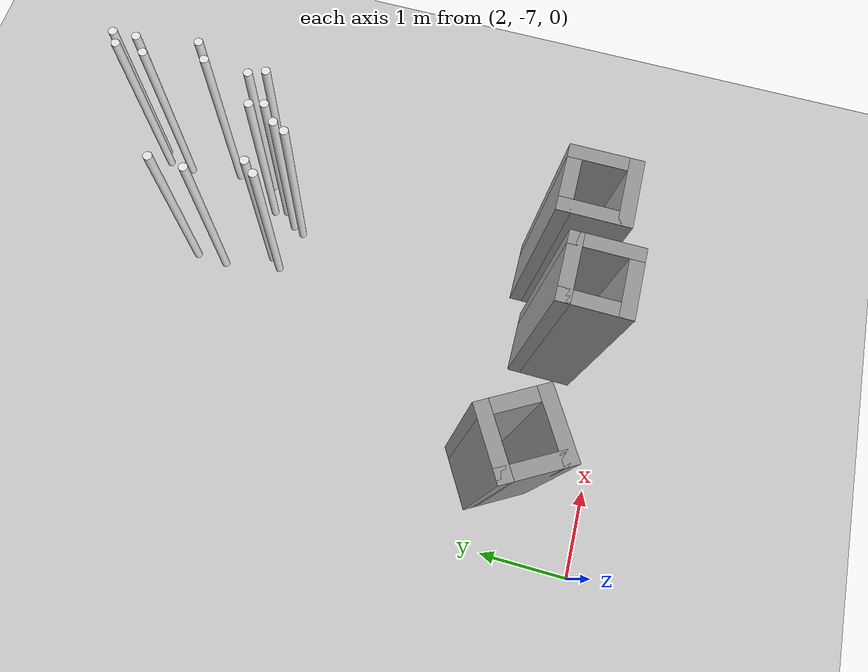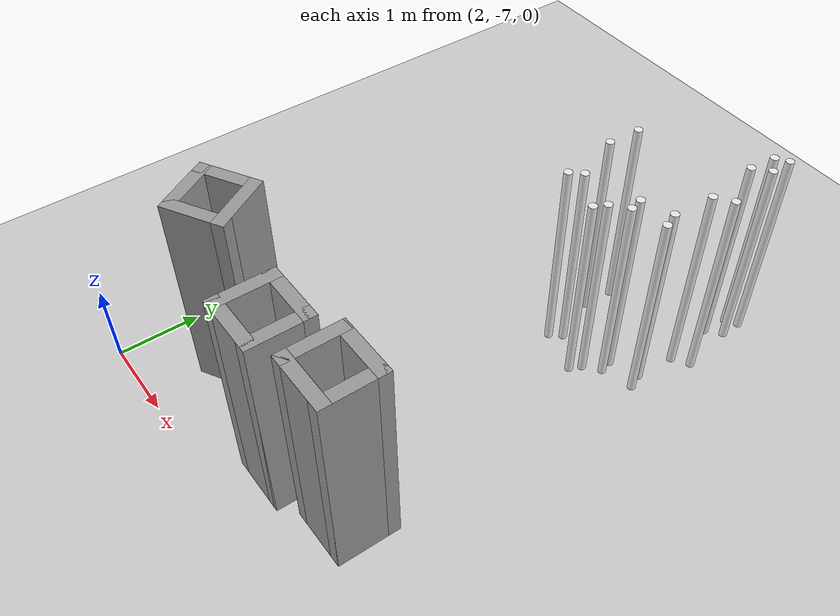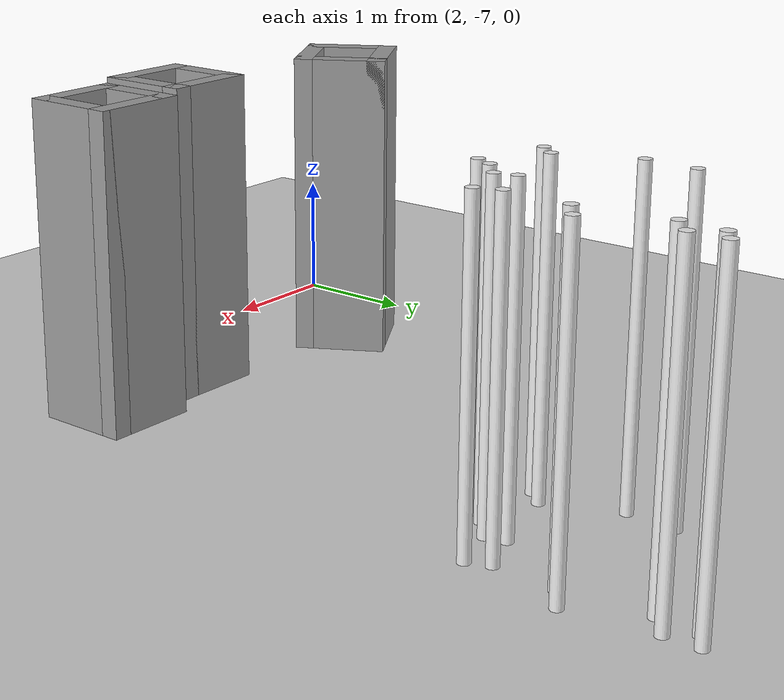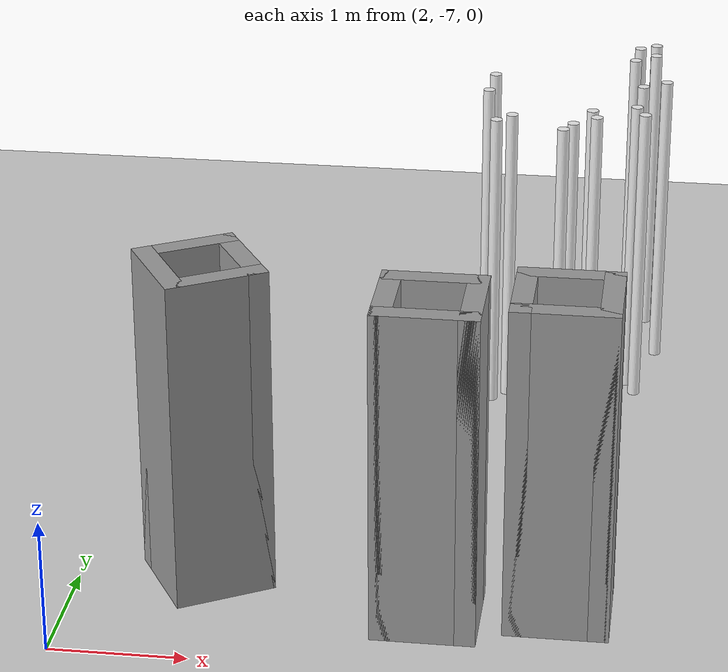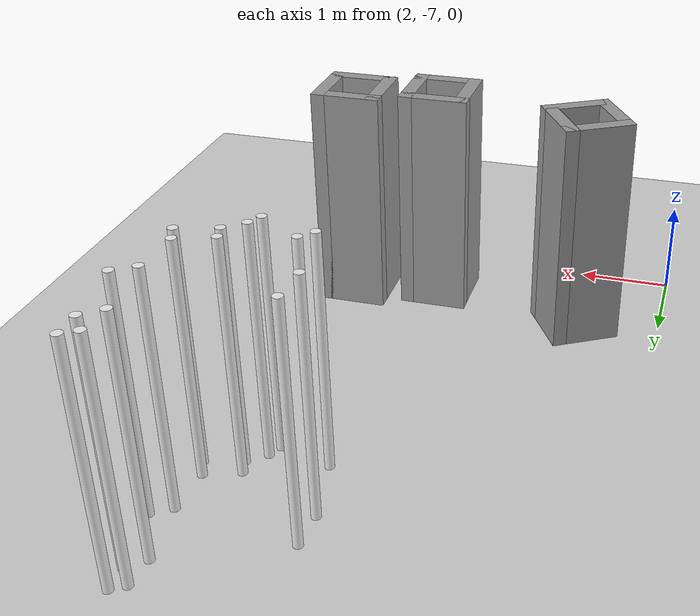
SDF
<sdf version="1.7">
 <world name="default">
  <model name="ground_plane">
   <static>1</static>
   <link name="link">
    <collision name="collision">
     <geometry><plane><normal>0 0 1</normal><size>100 100</size></plane></geometry>
     <surface><friction><ode><mu>100</mu><mu2>50</mu2></ode></friction></surface>
    </collision>
    <visual name="visual">
     <cast_shadows>0</cast_shadows>
     <geometry><plane><normal>0 0 1</normal><size>100 100</size></plane></geometry>
     <material>
      <script><uri>file://media/materials/scripts/gazebo.material</uri><name>Gazebo/Grey</name></script>
     </material>
    </visual>
   </link>
  </model>
  <model name="0.75m_cube_0">
   <pose>4.6917 -7.433 0 0 0 -1.04396</pose>
   <link name="Wall_0">
    <collision name="Wall_0_Collision">
     <geometry><box><size>0.75 0.15 2.5</size></box></geometry>
     <pose>0 0 1.25 0 -0 0</pose>
    </collision>
    <visual name="Wall_0_Visual">
     <pose>0 0 1.25 0 -0 0</pose>
     <geometry><box><size>0.75 0.15 2.5</size></box></geometry>
     <material>
      <script><uri>file://media/materials/scripts/gazebo.material</uri><name>Gazebo/Grey</name></script>
      <ambient>1 1 1 1</ambient>
     </material>
     <meta><layer>0</layer></meta>
    </visual>
    <pose>-2.5575 -0.7225 0 0 -0 -1.5708</pose>
   </link>
   <link name="Wall_1">
    <collision name="Wall_1_Collision">
     <geometry><box><size>0.75 0.15 2.5</size></box></geometry>
     <pose>0 0 1.25 0 -0 0</pose>
    </collision>
    <visual name="Wall_1_Visual">
     <pose>0 0 1.25 0 -0 0</pose>
     <geometry><box><size>0.75 0.15 2.5</size></box></geometry>
     <material>
      <script><uri>file://media/materials/scripts/gazebo.material</uri><name>Gazebo/Grey</name></script>
      <ambient>1 1 1 1</ambient>
     </material>
     <meta><layer>0</layer></meta>
    </visual>
    <pose>-2.2575 -1.0225 0 0 -0 0</pose>
   </link>
   <link name="Wall_2">
    <collision name="Wall_2_Collision">
     <geometry><box><size>0.75 0.15 2.5</size></box></geometry>
     <pose>0 0 1.25 0 -0 0</pose>
    </collision>
    <visual name="Wall_2_Visual">
     <pose>0 0 1.25 0 -0 0</pose>
     <geometry><box><size>0.75 0.15 2.5</size></box></geometry>
     <material>
      <script><uri>file://media/materials/scripts/gazebo.material</uri><name>Gazebo/Grey</name></script>
      <ambient>1 1 1 1</ambient>
     </material>
     <meta><layer>0</layer></meta>
    </visual>
    <pose>-1.9575 -0.7225 0 0 -0 1.5708</pose>
   </link>
   <link name="Wall_3">
    <collision name="Wall_3_Collision">
     <geometry><box><size>0.75 0.15 2.5</size></box></geometry>
     <pose>0 0 1.25 0 -0 0</pose>
    </collision>
    <visual name="Wall_3_Visual">
     <pose>0 0 1.25 0 -0 0</pose>
     <geometry><box><size>0.75 0.15 2.5</size></box></geometry>
     <material>
      <script><uri>file://media/materials/scripts/gazebo.material</uri><name>Gazebo/Grey</name></script>
      <ambient>1 1 1 1</ambient>
     </material>
     <meta><layer>0</layer></meta>
    </visual>
    <pose>-2.2575 -0.4225 0 0 -0 3.14159</pose>
   </link>
   <static>1</static>
  </model>
  <model name="0.75m_cube_1">
   <pose>6.83632 -5.49477 0 0 -0 0</pose>
   <link name="Wall_0">
    <collision name="Wall_0_Collision">
     <geometry><box><size>0.75 0.15 2.5</size></box></geometry>
     <pose>0 0 1.25 0 -0 0</pose>
    </collision>
    <visual name="Wall_0_Visual">
     <pose>0 0 1.25 0 -0 0</pose>
     <geometry><box><size>0.75 0.15 2.5</size></box></geometry>
     <material>
      <script><uri>file://media/materials/scripts/gazebo.material</uri><name>Gazebo/Grey</name></script>
      <ambient>1 1 1 1</ambient>
     </material>
     <meta><layer>0</layer></meta>
    </visual>
    <pose>-2.5575 -0.7225 0 0 -0 -1.5708</pose>
   </link>
   <link name="Wall_1">
    <collision name="Wall_1_Collision">
     <geometry><box><size>0.75 0.15 2.5</size></box></geometry>
     <pose>0 0 1.25 0 -0 0</pose>
    </collision>
    <visual name="Wall_1_Visual">
     <pose>0 0 1.25 0 -0 0</pose>
     <geometry><box><size>0.75 0.15 2.5</size></box></geometry>
     <material>
      <script><uri>file://media/materials/scripts/gazebo.material</uri><name>Gazebo/Grey</name></script>
      <ambient>1 1 1 1</ambient>
     </material>
     <meta><layer>0</layer></meta>
    </visual>
    <pose>-2.2575 -1.0225 0 0 -0 0</pose>
   </link>
   <link name="Wall_2">
    <collision name="Wall_2_Collision">
     <geometry><box><size>0.75 0.15 2.5</size></box></geometry>
     <pose>0 0 1.25 0 -0 0</pose>
    </collision>
    <visual name="Wall_2_Visual">
     <pose>0 0 1.25 0 -0 0</pose>
     <geometry><box><size>0.75 0.15 2.5</size></box></geometry>
     <material>
      <script><uri>file://media/materials/scripts/gazebo.material</uri><name>Gazebo/Grey</name></script>
      <ambient>1 1 1 1</ambient>
     </material>
     <meta><layer>0</layer></meta>
    </visual>
    <pose>-1.9575 -0.7225 0 0 -0 1.5708</pose>
   </link>
   <link name="Wall_3">
    <collision name="Wall_3_Collision">
     <geometry><box><size>0.75 0.15 2.5</size></box></geometry>
     <pose>0 0 1.25 0 -0 0</pose>
    </collision>
    <visual name="Wall_3_Visual">
     <pose>0 0 1.25 0 -0 0</pose>
     <geometry><box><size>0.75 0.15 2.5</size></box></geometry>
     <material>
      <script><uri>file://media/materials/scripts/gazebo.material</uri><name>Gazebo/Grey</name></script>
      <ambient>1 1 1 1</ambient>
     </material>
     <meta><layer>0</layer></meta>
    </visual>
    <pose>-2.2575 -0.4225 0 0 -0 3.14159</pose>
   </link>
   <static>1</static>
  </model>
  <model name="0.75m_cube_1_clone">
   <pose>7.75443 -5.3216 0 0 -0 0</pose>
   <link name="Wall_0">
    <collision name="Wall_0_Collision">
     <geometry><box><size>0.75 0.15 2.5</size></box></geometry>
     <pose>0 0 1.25 0 -0 0</pose>
    </collision>
    <visual name="Wall_0_Visual">
     <pose>0 0 1.25 0 -0 0</pose>
     <geometry><box><size>0.75 0.15 2.5</size></box></geometry>
     <material>
      <script><uri>file://media/materials/scripts/gazebo.material</uri><name>Gazebo/Grey</name></script>
      <ambient>1 1 1 1</ambient>
     </material>
     <meta><layer>0</layer></meta>
    </visual>
    <pose>-2.5575 -0.7225 0 0 -0 -1.5708</pose>
   </link>
   <link name="Wall_1">
    <collision name="Wall_1_Collision">
     <geometry><box><size>0.75 0.15 2.5</size></box></geometry>
     <pose>0 0 1.25 0 -0 0</pose>
    </collision>
    <visual name="Wall_1_Visual">
     <pose>0 0 1.25 0 -0 0</pose>
     <geometry><box><size>0.75 0.15 2.5</size></box></geometry>
     <material>
      <script><uri>file://media/materials/scripts/gazebo.material</uri><name>Gazebo/Grey</name></script>
      <ambient>1 1 1 1</ambient>
     </material>
     <meta><layer>0</layer></meta>
    </visual>
    <pose>-2.2575 -1.0225 0 0 -0 0</pose>
   </link>
   <link name="Wall_2">
    <collision name="Wall_2_Collision">
     <geometry><box><size>0.75 0.15 2.5</size></box></geometry>
     <pose>0 0 1.25 0 -0 0</pose>
    </collision>
    <visual name="Wall_2_Visual">
     <pose>0 0 1.25 0 -0 0</pose>
     <geometry><box><size>0.75 0.15 2.5</size></box></geometry>
     <material>
      <script><uri>file://media/materials/scripts/gazebo.material</uri><name>Gazebo/Grey</name></script>
      <ambient>1 1 1 1</ambient>
     </material>
     <meta><layer>0</layer></meta>
    </visual>
    <pose>-1.9575 -0.7225 0 0 -0 1.5708</pose>
   </link>
   <link name="Wall_3">
    <collision name="Wall_3_Collision">
     <geometry><box><size>0.75 0.15 2.5</size></box></geometry>
     <pose>0 0 1.25 0 -0 0</pose>
    </collision>
    <visual name="Wall_3_Visual">
     <pose>0 0 1.25 0 -0 0</pose>
     <geometry><box><size>0.75 0.15 2.5</size></box></geometry>
     <material>
      <script><uri>file://media/materials/scripts/gazebo.material</uri><name>Gazebo/Grey</name></script>
      <ambient>1 1 1 1</ambient>
     </material>
     <meta><layer>0</layer></meta>
    </visual>
    <pose>-2.2575 -0.4225 0 0 -0 3.14159</pose>
   </link>
   <static>1</static>
  </model>
  <model name="White_pole_clone">
   <link name="link_0">
    <inertial>
     <mass>1</mass>
     <inertia><ixx>0.145833</ixx><ixy>0</ixy><ixz>0</ixz><iyy>0.145833</iyy><iyz>0</iyz><izz>0.125</izz></inertia>
    </inertial>
    <visual name="visual">
     <geometry><cylinder><radius>0.0478039</radius><length>2.47001</length></cylinder></geometry>
     <material>
      <lighting>1</lighting>
      <script><uri>file://media/materials/scripts/gazebo.material</uri><name>Gazebo/White</name></script>
      <shader type="vertex"><normal_map>__default__</normal_map></shader>
      <ambient>1 1 1 1</ambient>
      <diffuse>1 1 1 1</diffuse>
      <specular>0 0 0 1</specular>
      <emissive>0 0 0 1</emissive>
     </material>
    </visual>
    <collision name="collision">
     <geometry><cylinder><radius>0.047804</radius><length>2.47001</length></cylinder></geometry>
     <surface>
      <friction>
       <ode><mu>1</mu><mu2>1</mu2><fdir1>0 0 0</fdir1><slip1>0</slip1><slip2>0</slip2></ode>
       <torsional>
        <coefficient>1</coefficient>
        <patch_radius>0</patch_radius>
        <surface_radius>0</surface_radius>
        <use_patch_radius>1</use_patch_radius>
        <ode><slip>0</slip></ode>
       </torsional>
      </friction>
      <bounce><restitution_coefficient>0</restitution_coefficient><threshold>1e+06</threshold></bounce>
      <contact>
       <collide_without_contact>0</collide_without_contact>
       <collide_without_contact_bitmask>1</collide_without_contact_bitmask>
       <collide_bitmask>1</collide_bitmask>
       <ode>
        <soft_cfm>0</soft_cfm>
        <soft_erp>0.2</soft_erp>
        <kp>1e+13</kp>
        <kd>1</kd>
        <max_vel>0.01</max_vel>
        <min_depth>0</min_depth>
       </ode>
       <bullet>
        <split_impulse>1</split_impulse>
        <split_impulse_penetration_threshold>-0.01</split_impulse_penetration_threshold>
        <soft_cfm>0</soft_cfm>
        <soft_erp>0.2</soft_erp>
        <kp>1e+13</kp>
        <kd>1</kd>
       </bullet>
      </contact>
     </surface>
    </collision>
   </link>
   <static>1</static>
   <pose>5.80842 -2.31498 1.235 0 -2e-06 -5e-06</pose>
  </model>
  <model name="White_pole_clone_clone">
   <link name="link_0">
    <inertial>
     <mass>1</mass>
     <inertia><ixx>0.145833</ixx><ixy>0</ixy><ixz>0</ixz><iyy>0.145833</iyy><iyz>0</iyz><izz>0.125</izz></inertia>
    </inertial>
    <visual name="visual">
     <geometry><cylinder><radius>0.0478039</radius><length>2.47001</length></cylinder></geometry>
     <material>
      <lighting>1</lighting>
      <script><uri>file://media/materials/scripts/gazebo.material</uri><name>Gazebo/White</name></script>
      <shader type="vertex"><normal_map>__default__</normal_map></shader>
      <ambient>1 1 1 1</ambient>
      <diffuse>1 1 1 1</diffuse>
      <specular>0 0 0 1</specular>
      <emissive>0 0 0 1</emissive>
     </material>
    </visual>
    <collision name="collision">
     <geometry><cylinder><radius>0.047804</radius><length>2.47001</length></cylinder></geometry>
     <surface>
      <friction>
       <ode><mu>1</mu><mu2>1</mu2><fdir1>0 0 0</fdir1><slip1>0</slip1><slip2>0</slip2></ode>
       <torsional>
        <coefficient>1</coefficient>
        <patch_radius>0</patch_radius>
        <surface_radius>0</surface_radius>
        <use_patch_radius>1</use_patch_radius>
        <ode><slip>0</slip></ode>
       </torsional>
      </friction>
      <bounce><restitution_coefficient>0</restitution_coefficient><threshold>1e+06</threshold></bounce>
      <contact>
       <collide_without_contact>0</collide_without_contact>
       <collide_without_contact_bitmask>1</collide_without_contact_bitmask>
       <collide_bitmask>1</collide_bitmask>
       <ode>
        <soft_cfm>0</soft_cfm>
        <soft_erp>0.2</soft_erp>
        <kp>1e+13</kp>
        <kd>1</kd>
        <max_vel>0.01</max_vel>
        <min_depth>0</min_depth>
       </ode>
       <bullet>
        <split_impulse>1</split_impulse>
        <split_impulse_penetration_threshold>-0.01</split_impulse_penetration_threshold>
        <soft_cfm>0</soft_cfm>
        <soft_erp>0.2</soft_erp>
        <kp>1e+13</kp>
        <kd>1</kd>
       </bullet>
      </contact>
     </surface>
    </collision>
   </link>
   <static>1</static>
   <pose>5.45895 -2.44059 1.235 0 -2e-06 -5e-06</pose>
  </model>
  <model name="White_pole_clone_clone_0">
   <link name="link_0">
    <inertial>
     <mass>1</mass>
     <inertia><ixx>0.145833</ixx><ixy>0</ixy><ixz>0</ixz><iyy>0.145833</iyy><iyz>0</iyz><izz>0.125</izz></inertia>
    </inertial>
    <visual name="visual">
     <geometry><cylinder><radius>0.0478039</radius><length>2.47001</length></cylinder></geometry>
     <material>
      <lighting>1</lighting>
      <script><uri>file://media/materials/scripts/gazebo.material</uri><name>Gazebo/White</name></script>
      <shader type="vertex"><normal_map>__default__</normal_map></shader>
      <ambient>1 1 1 1</ambient>
      <diffuse>1 1 1 1</diffuse>
      <specular>0 0 0 1</specular>
      <emissive>0 0 0 1</emissive>
     </material>
    </visual>
    <collision name="collision">
     <geometry><cylinder><radius>0.047804</radius><length>2.47001</length></cylinder></geometry>
     <surface>
      <friction>
       <ode><mu>1</mu><mu2>1</mu2><fdir1>0 0 0</fdir1><slip1>0</slip1><slip2>0</slip2></ode>
       <torsional>
        <coefficient>1</coefficient>
        <patch_radius>0</patch_radius>
        <surface_radius>0</surface_radius>
        <use_patch_radius>1</use_patch_radius>
        <ode><slip>0</slip></ode>
       </torsional>
      </friction>
      <bounce><restitution_coefficient>0</restitution_coefficient><threshold>1e+06</threshold></bounce>
      <contact>
       <collide_without_contact>0</collide_without_contact>
       <collide_without_contact_bitmask>1</collide_without_contact_bitmask>
       <collide_bitmask>1</collide_bitmask>
       <ode>
        <soft_cfm>0</soft_cfm>
        <soft_erp>0.2</soft_erp>
        <kp>1e+13</kp>
        <kd>1</kd>
        <max_vel>0.01</max_vel>
        <min_depth>0</min_depth>
       </ode>
       <bullet>
        <split_impulse>1</split_impulse>
        <split_impulse_penetration_threshold>-0.01</split_impulse_penetration_threshold>
        <soft_cfm>0</soft_cfm>
        <soft_erp>0.2</soft_erp>
        <kp>1e+13</kp>
        <kd>1</kd>
       </bullet>
      </contact>
     </surface>
    </collision>
   </link>
   <static>1</static>
   <pose>5.87971 -2.48644 1.235 0 -2e-06 -5e-06</pose>
  </model>
  <model name="White_pole_clone_clone_1">
   <link name="link_0">
    <inertial>
     <mass>1</mass>
     <inertia><ixx>0.145833</ixx><ixy>0</ixy><ixz>0</ixz><iyy>0.145833</iyy><iyz>0</iyz><izz>0.125</izz></inertia>
    </inertial>
    <visual name="visual">
     <geometry><cylinder><radius>0.0478039</radius><length>2.47001</length></cylinder></geometry>
     <material>
      <lighting>1</lighting>
      <script><uri>file://media/materials/scripts/gazebo.material</uri><name>Gazebo/White</name></script>
      <shader type="vertex"><normal_map>__default__</normal_map></shader>
      <ambient>1 1 1 1</ambient>
      <diffuse>1 1 1 1</diffuse>
      <specular>0 0 0 1</specular>
      <emissive>0 0 0 1</emissive>
     </material>
    </visual>
    <collision name="collision">
     <geometry><cylinder><radius>0.047804</radius><length>2.47001</length></cylinder></geometry>
     <surface>
      <friction>
       <ode><mu>1</mu><mu2>1</mu2><fdir1>0 0 0</fdir1><slip1>0</slip1><slip2>0</slip2></ode>
       <torsional>
        <coefficient>1</coefficient>
        <patch_radius>0</patch_radius>
        <surface_radius>0</surface_radius>
        <use_patch_radius>1</use_patch_radius>
        <ode><slip>0</slip></ode>
       </torsional>
      </friction>
      <bounce><restitution_coefficient>0</restitution_coefficient><threshold>1e+06</threshold></bounce>
      <contact>
       <collide_without_contact>0</collide_without_contact>
       <collide_without_contact_bitmask>1</collide_without_contact_bitmask>
       <collide_bitmask>1</collide_bitmask>
       <ode>
        <soft_cfm>0</soft_cfm>
        <soft_erp>0.2</soft_erp>
        <kp>1e+13</kp>
        <kd>1</kd>
        <max_vel>0.01</max_vel>
        <min_depth>0</min_depth>
       </ode>
       <bullet>
        <split_impulse>1</split_impulse>
        <split_impulse_penetration_threshold>-0.01</split_impulse_penetration_threshold>
        <soft_cfm>0</soft_cfm>
        <soft_erp>0.2</soft_erp>
        <kp>1e+13</kp>
        <kd>1</kd>
       </bullet>
      </contact>
     </surface>
    </collision>
   </link>
   <static>1</static>
   <pose>5.50038 -2.5943 1.235 0 -2e-06 -5e-06</pose>
  </model>
  <model name="White_pole_clone_clone_2">
   <link name="link_0">
    <inertial>
     <mass>1</mass>
     <inertia><ixx>0.145833</ixx><ixy>0</ixy><ixz>0</ixz><iyy>0.145833</iyy><iyz>0</iyz><izz>0.125</izz></inertia>
    </inertial>
    <visual name="visual">
     <geometry><cylinder><radius>0.0478039</radius><length>2.47001</length></cylinder></geometry>
     <material>
      <lighting>1</lighting>
      <script><uri>file://media/materials/scripts/gazebo.material</uri><name>Gazebo/White</name></script>
      <shader type="vertex"><normal_map>__default__</normal_map></shader>
      <ambient>1 1 1 1</ambient>
      <diffuse>1 1 1 1</diffuse>
      <specular>0 0 0 1</specular>
      <emissive>0 0 0 1</emissive>
     </material>
    </visual>
    <collision name="collision">
     <geometry><cylinder><radius>0.047804</radius><length>2.47001</length></cylinder></geometry>
     <surface>
      <friction>
       <ode><mu>1</mu><mu2>1</mu2><fdir1>0 0 0</fdir1><slip1>0</slip1><slip2>0</slip2></ode>
       <torsional>
        <coefficient>1</coefficient>
        <patch_radius>0</patch_radius>
        <surface_radius>0</surface_radius>
        <use_patch_radius>1</use_patch_radius>
        <ode><slip>0</slip></ode>
       </torsional>
      </friction>
      <bounce><restitution_coefficient>0</restitution_coefficient><threshold>1e+06</threshold></bounce>
      <contact>
       <collide_without_contact>0</collide_without_contact>
       <collide_without_contact_bitmask>1</collide_without_contact_bitmask>
       <collide_bitmask>1</collide_bitmask>
       <ode>
        <soft_cfm>0</soft_cfm>
        <soft_erp>0.2</soft_erp>
        <kp>1e+13</kp>
        <kd>1</kd>
        <max_vel>0.01</max_vel>
        <min_depth>0</min_depth>
       </ode>
       <bullet>
        <split_impulse>1</split_impulse>
        <split_impulse_penetration_threshold>-0.01</split_impulse_penetration_threshold>
        <soft_cfm>0</soft_cfm>
        <soft_erp>0.2</soft_erp>
        <kp>1e+13</kp>
        <kd>1</kd>
       </bullet>
      </contact>
     </surface>
    </collision>
   </link>
   <static>1</static>
   <pose>5.32308 -2.74641 1.235 0 -2e-06 -5e-06</pose>
  </model>
  <model name="White_pole_clone_clone_3">
   <link name="link_0">
    <inertial>
     <mass>1</mass>
     <inertia><ixx>0.145833</ixx><ixy>0</ixy><ixz>0</ixz><iyy>0.145833</iyy><iyz>0</iyz><izz>0.125</izz></inertia>
    </inertial>
    <visual name="visual">
     <geometry><cylinder><radius>0.0478039</radius><length>2.47001</length></cylinder></geometry>
     <material>
      <lighting>1</lighting>
      <script><uri>file://media/materials/scripts/gazebo.material</uri><name>Gazebo/White</name></script>
      <shader type="vertex"><normal_map>__default__</normal_map></shader>
      <ambient>1 1 1 1</ambient>
      <diffuse>1 1 1 1</diffuse>
      <specular>0 0 0 1</specular>
      <emissive>0 0 0 1</emissive>
     </material>
    </visual>
    <collision name="collision">
     <geometry><cylinder><radius>0.047804</radius><length>2.47001</length></cylinder></geometry>
     <surface>
      <friction>
       <ode><mu>1</mu><mu2>1</mu2><fdir1>0 0 0</fdir1><slip1>0</slip1><slip2>0</slip2></ode>
       <torsional>
        <coefficient>1</coefficient>
        <patch_radius>0</patch_radius>
        <surface_radius>0</surface_radius>
        <use_patch_radius>1</use_patch_radius>
        <ode><slip>0</slip></ode>
       </torsional>
      </friction>
      <bounce><restitution_coefficient>0</restitution_coefficient><threshold>1e+06</threshold></bounce>
      <contact>
       <collide_without_contact>0</collide_without_contact>
       <collide_without_contact_bitmask>1</collide_without_contact_bitmask>
       <collide_bitmask>1</collide_bitmask>
       <ode>
        <soft_cfm>0</soft_cfm>
        <soft_erp>0.2</soft_erp>
        <kp>1e+13</kp>
        <kd>1</kd>
        <max_vel>0.01</max_vel>
        <min_depth>0</min_depth>
       </ode>
       <bullet>
        <split_impulse>1</split_impulse>
        <split_impulse_penetration_threshold>-0.01</split_impulse_penetration_threshold>
        <soft_cfm>0</soft_cfm>
        <soft_erp>0.2</soft_erp>
        <kp>1e+13</kp>
        <kd>1</kd>
       </bullet>
      </contact>
     </surface>
    </collision>
   </link>
   <static>1</static>
   <pose>5.25251 -2.8837 1.235 0 -2e-06 -5e-06</pose>
  </model>
  <model name="White_pole_clone_clone_4">
   <link name="link_0">
    <inertial>
     <mass>1</mass>
     <inertia><ixx>0.145833</ixx><ixy>0</ixy><ixz>0</ixz><iyy>0.145833</iyy><iyz>0</iyz><izz>0.125</izz></inertia>
    </inertial>
    <visual name="visual">
     <geometry><cylinder><radius>0.0478039</radius><length>2.47001</length></cylinder></geometry>
     <material>
      <lighting>1</lighting>
      <script><uri>file://media/materials/scripts/gazebo.material</uri><name>Gazebo/White</name></script>
      <shader type="vertex"><normal_map>__default__</normal_map></shader>
      <ambient>1 1 1 1</ambient>
      <diffuse>1 1 1 1</diffuse>
      <specular>0 0 0 1</specular>
      <emissive>0 0 0 1</emissive>
     </material>
    </visual>
    <collision name="collision">
     <geometry><cylinder><radius>0.047804</radius><length>2.47001</length></cylinder></geometry>
     <surface>
      <friction>
       <ode><mu>1</mu><mu2>1</mu2><fdir1>0 0 0</fdir1><slip1>0</slip1><slip2>0</slip2></ode>
       <torsional>
        <coefficient>1</coefficient>
        <patch_radius>0</patch_radius>
        <surface_radius>0</surface_radius>
        <use_patch_radius>1</use_patch_radius>
        <ode><slip>0</slip></ode>
       </torsional>
      </friction>
      <bounce><restitution_coefficient>0</restitution_coefficient><threshold>1e+06</threshold></bounce>
      <contact>
       <collide_without_contact>0</collide_without_contact>
       <collide_without_contact_bitmask>1</collide_without_contact_bitmask>
       <collide_bitmask>1</collide_bitmask>
       <ode>
        <soft_cfm>0</soft_cfm>
        <soft_erp>0.2</soft_erp>
        <kp>1e+13</kp>
        <kd>1</kd>
        <max_vel>0.01</max_vel>
        <min_depth>0</min_depth>
       </ode>
       <bullet>
        <split_impulse>1</split_impulse>
        <split_impulse_penetration_threshold>-0.01</split_impulse_penetration_threshold>
        <soft_cfm>0</soft_cfm>
        <soft_erp>0.2</soft_erp>
        <kp>1e+13</kp>
        <kd>1</kd>
       </bullet>
      </contact>
     </surface>
    </collision>
   </link>
   <static>1</static>
   <pose>4.82684 -2.61062 1.235 0 -2e-06 -5e-06</pose>
  </model>
  <model name="White_pole_clone_clone_5">
   <link name="link_0">
    <inertial>
     <mass>1</mass>
     <inertia><ixx>0.145833</ixx><ixy>0</ixy><ixz>0</ixz><iyy>0.145833</iyy><iyz>0</iyz><izz>0.125</izz></inertia>
    </inertial>
    <visual name="visual">
     <geometry><cylinder><radius>0.0478039</radius><length>2.47001</length></cylinder></geometry>
     <material>
      <lighting>1</lighting>
      <script><uri>file://media/materials/scripts/gazebo.material</uri><name>Gazebo/White</name></script>
      <shader type="vertex"><normal_map>__default__</normal_map></shader>
      <ambient>1 1 1 1</ambient>
      <diffuse>1 1 1 1</diffuse>
      <specular>0 0 0 1</specular>
      <emissive>0 0 0 1</emissive>
     </material>
    </visual>
    <collision name="collision">
     <geometry><cylinder><radius>0.047804</radius><length>2.47001</length></cylinder></geometry>
     <surface>
      <friction>
       <ode><mu>1</mu><mu2>1</mu2><fdir1>0 0 0</fdir1><slip1>0</slip1><slip2>0</slip2></ode>
       <torsional>
        <coefficient>1</coefficient>
        <patch_radius>0</patch_radius>
        <surface_radius>0</surface_radius>
        <use_patch_radius>1</use_patch_radius>
        <ode><slip>0</slip></ode>
       </torsional>
      </friction>
      <bounce><restitution_coefficient>0</restitution_coefficient><threshold>1e+06</threshold></bounce>
      <contact>
       <collide_without_contact>0</collide_without_contact>
       <collide_without_contact_bitmask>1</collide_without_contact_bitmask>
       <collide_bitmask>1</collide_bitmask>
       <ode>
        <soft_cfm>0</soft_cfm>
        <soft_erp>0.2</soft_erp>
        <kp>1e+13</kp>
        <kd>1</kd>
        <max_vel>0.01</max_vel>
        <min_depth>0</min_depth>
       </ode>
       <bullet>
        <split_impulse>1</split_impulse>
        <split_impulse_penetration_threshold>-0.01</split_impulse_penetration_threshold>
        <soft_cfm>0</soft_cfm>
        <soft_erp>0.2</soft_erp>
        <kp>1e+13</kp>
        <kd>1</kd>
       </bullet>
      </contact>
     </surface>
    </collision>
   </link>
   <static>1</static>
   <pose>4.71283 -2.73663 1.235 0 -2e-06 -5e-06</pose>
  </model>
  <model name="White_pole_clone_clone_6">
   <link name="link_0">
    <inertial>
     <mass>1</mass>
     <inertia><ixx>0.145833</ixx><ixy>0</ixy><ixz>0</ixz><iyy>0.145833</iyy><iyz>0</iyz><izz>0.125</izz></inertia>
    </inertial>
    <visual name="visual">
     <geometry><cylinder><radius>0.0478039</radius><length>2.47001</length></cylinder></geometry>
     <material>
      <lighting>1</lighting>
      <script><uri>file://media/materials/scripts/gazebo.material</uri><name>Gazebo/White</name></script>
      <shader type="vertex"><normal_map>__default__</normal_map></shader>
      <ambient>1 1 1 1</ambient>
      <diffuse>1 1 1 1</diffuse>
      <specular>0 0 0 1</specular>
      <emissive>0 0 0 1</emissive>
     </material>
    </visual>
    <collision name="collision">
     <geometry><cylinder><radius>0.047804</radius><length>2.47001</length></cylinder></geometry>
     <surface>
      <friction>
       <ode><mu>1</mu><mu2>1</mu2><fdir1>0 0 0</fdir1><slip1>0</slip1><slip2>0</slip2></ode>
       <torsional>
        <coefficient>1</coefficient>
        <patch_radius>0</patch_radius>
        <surface_radius>0</surface_radius>
        <use_patch_radius>1</use_patch_radius>
        <ode><slip>0</slip></ode>
       </torsional>
      </friction>
      <bounce><restitution_coefficient>0</restitution_coefficient><threshold>1e+06</threshold></bounce>
      <contact>
       <collide_without_contact>0</collide_without_contact>
       <collide_without_contact_bitmask>1</collide_without_contact_bitmask>
       <collide_bitmask>1</collide_bitmask>
       <ode>
        <soft_cfm>0</soft_cfm>
        <soft_erp>0.2</soft_erp>
        <kp>1e+13</kp>
        <kd>1</kd>
        <max_vel>0.01</max_vel>
        <min_depth>0</min_depth>
       </ode>
       <bullet>
        <split_impulse>1</split_impulse>
        <split_impulse_penetration_threshold>-0.01</split_impulse_penetration_threshold>
        <soft_cfm>0</soft_cfm>
        <soft_erp>0.2</soft_erp>
        <kp>1e+13</kp>
        <kd>1</kd>
       </bullet>
      </contact>
     </surface>
    </collision>
   </link>
   <static>1</static>
   <pose>4.59185 -2.05457 1.235 0 -2e-06 -5e-06</pose>
  </model>
  <model name="White_pole_clone_clone_8">
   <link name="link_0">
    <inertial>
     <mass>1</mass>
     <inertia><ixx>0.145833</ixx><ixy>0</ixy><ixz>0</ixz><iyy>0.145833</iyy><iyz>0</iyz><izz>0.125</izz></inertia>
    </inertial>
    <visual name="visual">
     <geometry><cylinder><radius>0.0478039</radius><length>2.47001</length></cylinder></geometry>
     <material>
      <lighting>1</lighting>
      <script><uri>file://media/materials/scripts/gazebo.material</uri><name>Gazebo/White</name></script>
      <shader type="vertex"><normal_map>__default__</normal_map></shader>
      <ambient>1 1 1 1</ambient>
      <diffuse>1 1 1 1</diffuse>
      <specular>0 0 0 1</specular>
      <emissive>0 0 0 1</emissive>
     </material>
    </visual>
    <collision name="collision">
     <geometry><cylinder><radius>0.047804</radius><length>2.47001</length></cylinder></geometry>
     <surface>
      <friction>
       <ode><mu>1</mu><mu2>1</mu2><fdir1>0 0 0</fdir1><slip1>0</slip1><slip2>0</slip2></ode>
       <torsional>
        <coefficient>1</coefficient>
        <patch_radius>0</patch_radius>
        <surface_radius>0</surface_radius>
        <use_patch_radius>1</use_patch_radius>
        <ode><slip>0</slip></ode>
       </torsional>
      </friction>
      <bounce><restitution_coefficient>0</restitution_coefficient><threshold>1e+06</threshold></bounce>
      <contact>
       <collide_without_contact>0</collide_without_contact>
       <collide_without_contact_bitmask>1</collide_without_contact_bitmask>
       <collide_bitmask>1</collide_bitmask>
       <ode>
        <soft_cfm>0</soft_cfm>
        <soft_erp>0.2</soft_erp>
        <kp>1e+13</kp>
        <kd>1</kd>
        <max_vel>0.01</max_vel>
        <min_depth>0</min_depth>
       </ode>
       <bullet>
        <split_impulse>1</split_impulse>
        <split_impulse_penetration_threshold>-0.01</split_impulse_penetration_threshold>
        <soft_cfm>0</soft_cfm>
        <soft_erp>0.2</soft_erp>
        <kp>1e+13</kp>
        <kd>1</kd>
       </bullet>
      </contact>
     </surface>
    </collision>
   </link>
   <static>1</static>
   <pose>4.61319 -1.67139 1.235 0 -2e-06 -5e-06</pose>
  </model>
  <model name="White_pole_clone_clone_10_clone_23">
   <link name="link_0">
    <inertial>
     <mass>1</mass>
     <inertia><ixx>0.145833</ixx><ixy>0</ixy><ixz>0</ixz><iyy>0.145833</iyy><iyz>0</iyz><izz>0.125</izz></inertia>
    </inertial>
    <visual name="visual">
     <geometry><cylinder><radius>0.0478039</radius><length>2.47001</length></cylinder></geometry>
     <material>
      <lighting>1</lighting>
      <script><uri>file://media/materials/scripts/gazebo.material</uri><name>Gazebo/White</name></script>
      <shader type="vertex"><normal_map>__default__</normal_map></shader>
      <ambient>1 1 1 1</ambient>
      <diffuse>1 1 1 1</diffuse>
      <specular>0 0 0 1</specular>
      <emissive>0 0 0 1</emissive>
     </material>
    </visual>
    <collision name="collision">
     <geometry><cylinder><radius>0.047804</radius><length>2.47001</length></cylinder></geometry>
     <surface>
      <friction>
       <ode><mu>1</mu><mu2>1</mu2><fdir1>0 0 0</fdir1><slip1>0</slip1><slip2>0</slip2></ode>
       <torsional>
        <coefficient>1</coefficient>
        <patch_radius>0</patch_radius>
        <surface_radius>0</surface_radius>
        <use_patch_radius>1</use_patch_radius>
        <ode><slip>0</slip></ode>
       </torsional>
      </friction>
      <bounce><restitution_coefficient>0</restitution_coefficient><threshold>1e+06</threshold></bounce>
      <contact>
       <collide_without_contact>0</collide_without_contact>
       <collide_without_contact_bitmask>1</collide_without_contact_bitmask>
       <collide_bitmask>1</collide_bitmask>
       <ode>
        <soft_cfm>0</soft_cfm>
        <soft_erp>0.2</soft_erp>
        <kp>1e+13</kp>
        <kd>1</kd>
        <max_vel>0.01</max_vel>
        <min_depth>0</min_depth>
       </ode>
       <bullet>
        <split_impulse>1</split_impulse>
        <split_impulse_penetration_threshold>-0.01</split_impulse_penetration_threshold>
        <soft_cfm>0</soft_cfm>
        <soft_erp>0.2</soft_erp>
        <kp>1e+13</kp>
        <kd>1</kd>
       </bullet>
      </contact>
     </surface>
    </collision>
   </link>
   <static>1</static>
   <pose>5.91323 -0.780179 1.235 0 -2e-06 -5e-06</pose>
  </model>
  <model name="White_pole_clone_clone_10_clone_24">
   <link name="link_0">
    <inertial>
     <mass>1</mass>
     <inertia><ixx>0.145833</ixx><ixy>0</ixy><ixz>0</ixz><iyy>0.145833</iyy><iyz>0</iyz><izz>0.125</izz></inertia>
    </inertial>
    <visual name="visual">
     <geometry><cylinder><radius>0.0478039</radius><length>2.47001</length></cylinder></geometry>
     <material>
      <lighting>1</lighting>
      <script><uri>file://media/materials/scripts/gazebo.material</uri><name>Gazebo/White</name></script>
      <shader type="vertex"><normal_map>__default__</normal_map></shader>
      <ambient>1 1 1 1</ambient>
      <diffuse>1 1 1 1</diffuse>
      <specular>0 0 0 1</specular>
      <emissive>0 0 0 1</emissive>
     </material>
    </visual>
    <collision name="collision">
     <geometry><cylinder><radius>0.047804</radius><length>2.47001</length></cylinder></geometry>
     <surface>
      <friction>
       <ode><mu>1</mu><mu2>1</mu2><fdir1>0 0 0</fdir1><slip1>0</slip1><slip2>0</slip2></ode>
       <torsional>
        <coefficient>1</coefficient>
        <patch_radius>0</patch_radius>
        <surface_radius>0</surface_radius>
        <use_patch_radius>1</use_patch_radius>
        <ode><slip>0</slip></ode>
       </torsional>
      </friction>
      <bounce><restitution_coefficient>0</restitution_coefficient><threshold>1e+06</threshold></bounce>
      <contact>
       <collide_without_contact>0</collide_without_contact>
       <collide_without_contact_bitmask>1</collide_without_contact_bitmask>
       <collide_bitmask>1</collide_bitmask>
       <ode>
        <soft_cfm>0</soft_cfm>
        <soft_erp>0.2</soft_erp>
        <kp>1e+13</kp>
        <kd>1</kd>
        <max_vel>0.01</max_vel>
        <min_depth>0</min_depth>
       </ode>
       <bullet>
        <split_impulse>1</split_impulse>
        <split_impulse_penetration_threshold>-0.01</split_impulse_penetration_threshold>
        <soft_cfm>0</soft_cfm>
        <soft_erp>0.2</soft_erp>
        <kp>1e+13</kp>
        <kd>1</kd>
       </bullet>
      </contact>
     </surface>
    </collision>
   </link>
   <static>1</static>
   <pose>5.77968 -0.863572 1.235 0 -2e-06 -5e-06</pose>
  </model>
  <model name="White_pole_clone_clone_10_clone_25">
   <link name="link_0">
    <inertial>
     <mass>1</mass>
     <inertia><ixx>0.145833</ixx><ixy>0</ixy><ixz>0</ixz><iyy>0.145833</iyy><iyz>0</iyz><izz>0.125</izz></inertia>
    </inertial>
    <visual name="visual">
     <geometry><cylinder><radius>0.0478039</radius><length>2.47001</length></cylinder></geometry>
     <material>
      <lighting>1</lighting>
      <script><uri>file://media/materials/scripts/gazebo.material</uri><name>Gazebo/White</name></script>
      <shader type="vertex"><normal_map>__default__</normal_map></shader>
      <ambient>1 1 1 1</ambient>
      <diffuse>1 1 1 1</diffuse>
      <specular>0 0 0 1</specular>
      <emissive>0 0 0 1</emissive>
     </material>
    </visual>
    <collision name="collision">
     <geometry><cylinder><radius>0.047804</radius><length>2.47001</length></cylinder></geometry>
     <surface>
      <friction>
       <ode><mu>1</mu><mu2>1</mu2><fdir1>0 0 0</fdir1><slip1>0</slip1><slip2>0</slip2></ode>
       <torsional>
        <coefficient>1</coefficient>
        <patch_radius>0</patch_radius>
        <surface_radius>0</surface_radius>
        <use_patch_radius>1</use_patch_radius>
        <ode><slip>0</slip></ode>
       </torsional>
      </friction>
      <bounce><restitution_coefficient>0</restitution_coefficient><threshold>1e+06</threshold></bounce>
      <contact>
       <collide_without_contact>0</collide_without_contact>
       <collide_without_contact_bitmask>1</collide_without_contact_bitmask>
       <collide_bitmask>1</collide_bitmask>
       <ode>
        <soft_cfm>0</soft_cfm>
        <soft_erp>0.2</soft_erp>
        <kp>1e+13</kp>
        <kd>1</kd>
        <max_vel>0.01</max_vel>
        <min_depth>0</min_depth>
       </ode>
       <bullet>
        <split_impulse>1</split_impulse>
        <split_impulse_penetration_threshold>-0.01</split_impulse_penetration_threshold>
        <soft_cfm>0</soft_cfm>
        <soft_erp>0.2</soft_erp>
        <kp>1e+13</kp>
        <kd>1</kd>
       </bullet>
      </contact>
     </surface>
    </collision>
   </link>
   <static>1</static>
   <pose>5.92023 -1.03907 1.235 0 -2e-06 -5e-06</pose>
  </model>
  <model name="White_pole_clone_clone_10_clone_26">
   <link name="link_0">
    <inertial>
     <mass>1</mass>
     <inertia><ixx>0.145833</ixx><ixy>0</ixy><ixz>0</ixz><iyy>0.145833</iyy><iyz>0</iyz><izz>0.125</izz></inertia>
    </inertial>
    <visual name="visual">
     <geometry><cylinder><radius>0.0478039</radius><length>2.47001</length></cylinder></geometry>
     <material>
      <lighting>1</lighting>
      <script><uri>file://media/materials/scripts/gazebo.material</uri><name>Gazebo/White</name></script>
      <shader type="vertex"><normal_map>__default__</normal_map></shader>
      <ambient>1 1 1 1</ambient>
      <diffuse>1 1 1 1</diffuse>
      <specular>0 0 0 1</specular>
      <emissive>0 0 0 1</emissive>
     </material>
    </visual>
    <collision name="collision">
     <geometry><cylinder><radius>0.047804</radius><length>2.47001</length></cylinder></geometry>
     <surface>
      <friction>
       <ode><mu>1</mu><mu2>1</mu2><fdir1>0 0 0</fdir1><slip1>0</slip1><slip2>0</slip2></ode>
       <torsional>
        <coefficient>1</coefficient>
        <patch_radius>0</patch_radius>
        <surface_radius>0</surface_radius>
        <use_patch_radius>1</use_patch_radius>
        <ode><slip>0</slip></ode>
       </torsional>
      </friction>
      <bounce><restitution_coefficient>0</restitution_coefficient><threshold>1e+06</threshold></bounce>
      <contact>
       <collide_without_contact>0</collide_without_contact>
       <collide_without_contact_bitmask>1</collide_without_contact_bitmask>
       <collide_bitmask>1</collide_bitmask>
       <ode>
        <soft_cfm>0</soft_cfm>
        <soft_erp>0.2</soft_erp>
        <kp>1e+13</kp>
        <kd>1</kd>
        <max_vel>0.01</max_vel>
        <min_depth>0</min_depth>
       </ode>
       <bullet>
        <split_impulse>1</split_impulse>
        <split_impulse_penetration_threshold>-0.01</split_impulse_penetration_threshold>
        <soft_cfm>0</soft_cfm>
        <soft_erp>0.2</soft_erp>
        <kp>1e+13</kp>
        <kd>1</kd>
       </bullet>
      </contact>
     </surface>
    </collision>
   </link>
   <static>1</static>
   <pose>5.75107 -1.1788 1.235 0 -2e-06 -5e-06</pose>
  </model>
  <model name="White_pole_clone_clone_10_clone_27">
   <link name="link_0">
    <inertial>
     <mass>1</mass>
     <inertia><ixx>0.145833</ixx><ixy>0</ixy><ixz>0</ixz><iyy>0.145833</iyy><iyz>0</iyz><izz>0.125</izz></inertia>
    </inertial>
    <visual name="visual">
     <geometry><cylinder><radius>0.0478039</radius><length>2.47001</length></cylinder></geometry>
     <material>
      <lighting>1</lighting>
      <script><uri>file://media/materials/scripts/gazebo.material</uri><name>Gazebo/White</name></script>
      <shader type="vertex"><normal_map>__default__</normal_map></shader>
      <ambient>1 1 1 1</ambient>
      <diffuse>1 1 1 1</diffuse>
      <specular>0 0 0 1</specular>
      <emissive>0 0 0 1</emissive>
     </material>
    </visual>
    <collision name="collision">
     <geometry><cylinder><radius>0.047804</radius><length>2.47001</length></cylinder></geometry>
     <surface>
      <friction>
       <ode><mu>1</mu><mu2>1</mu2><fdir1>0 0 0</fdir1><slip1>0</slip1><slip2>0</slip2></ode>
       <torsional>
        <coefficient>1</coefficient>
        <patch_radius>0</patch_radius>
        <surface_radius>0</surface_radius>
        <use_patch_radius>1</use_patch_radius>
        <ode><slip>0</slip></ode>
       </torsional>
      </friction>
      <bounce><restitution_coefficient>0</restitution_coefficient><threshold>1e+06</threshold></bounce>
      <contact>
       <collide_without_contact>0</collide_without_contact>
       <collide_without_contact_bitmask>1</collide_without_contact_bitmask>
       <collide_bitmask>1</collide_bitmask>
       <ode>
        <soft_cfm>0</soft_cfm>
        <soft_erp>0.2</soft_erp>
        <kp>1e+13</kp>
        <kd>1</kd>
        <max_vel>0.01</max_vel>
        <min_depth>0</min_depth>
       </ode>
       <bullet>
        <split_impulse>1</split_impulse>
        <split_impulse_penetration_threshold>-0.01</split_impulse_penetration_threshold>
        <soft_cfm>0</soft_cfm>
        <soft_erp>0.2</soft_erp>
        <kp>1e+13</kp>
        <kd>1</kd>
       </bullet>
      </contact>
     </surface>
    </collision>
   </link>
   <static>1</static>
   <pose>6.02854 -1.69679 1.235 0 -2e-06 -5e-06</pose>
  </model>
  <model name="White_pole_clone_clone_10_clone_28">
   <link name="link_0">
    <inertial>
     <mass>1</mass>
     <inertia><ixx>0.145833</ixx><ixy>0</ixy><ixz>0</ixz><iyy>0.145833</iyy><iyz>0</iyz><izz>0.125</izz></inertia>
    </inertial>
    <visual name="visual">
     <geometry><cylinder><radius>0.0478039</radius><length>2.47001</length></cylinder></geometry>
     <material>
      <lighting>1</lighting>
      <script><uri>file://media/materials/scripts/gazebo.material</uri><name>Gazebo/White</name></script>
      <shader type="vertex"><normal_map>__default__</normal_map></shader>
      <ambient>1 1 1 1</ambient>
      <diffuse>1 1 1 1</diffuse>
      <specular>0 0 0 1</specular>
      <emissive>0 0 0 1</emissive>
     </material>
    </visual>
    <collision name="collision">
     <geometry><cylinder><radius>0.047804</radius><length>2.47001</length></cylinder></geometry>
     <surface>
      <friction>
       <ode><mu>1</mu><mu2>1</mu2><fdir1>0 0 0</fdir1><slip1>0</slip1><slip2>0</slip2></ode>
       <torsional>
        <coefficient>1</coefficient>
        <patch_radius>0</patch_radius>
        <surface_radius>0</surface_radius>
        <use_patch_radius>1</use_patch_radius>
        <ode><slip>0</slip></ode>
       </torsional>
      </friction>
      <bounce><restitution_coefficient>0</restitution_coefficient><threshold>1e+06</threshold></bounce>
      <contact>
       <collide_without_contact>0</collide_without_contact>
       <collide_without_contact_bitmask>1</collide_without_contact_bitmask>
       <collide_bitmask>1</collide_bitmask>
       <ode>
        <soft_cfm>0</soft_cfm>
        <soft_erp>0.2</soft_erp>
        <kp>1e+13</kp>
        <kd>1</kd>
        <max_vel>0.01</max_vel>
        <min_depth>0</min_depth>
       </ode>
       <bullet>
        <split_impulse>1</split_impulse>
        <split_impulse_penetration_threshold>-0.01</split_impulse_penetration_threshold>
        <soft_cfm>0</soft_cfm>
        <soft_erp>0.2</soft_erp>
        <kp>1e+13</kp>
        <kd>1</kd>
       </bullet>
      </contact>
     </surface>
    </collision>
   </link>
   <static>1</static>
   <pose>5.84064 -1.82463 1.235 0 -2e-06 -5e-06</pose>
  </model>
 </world>
</sdf>
